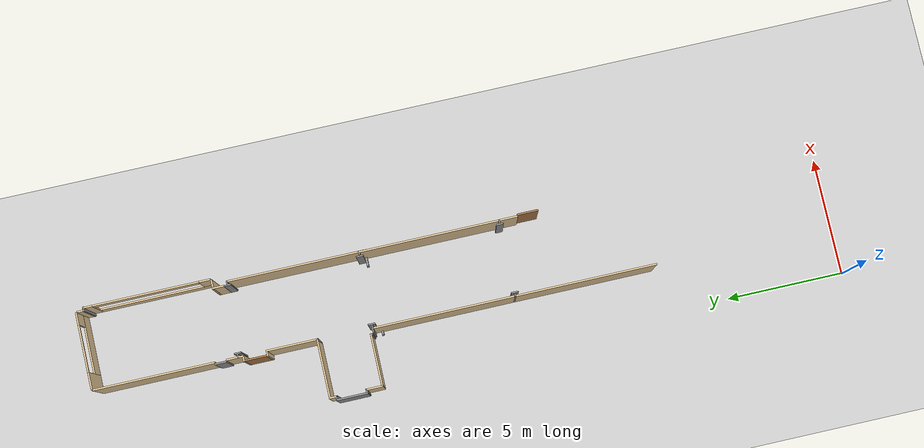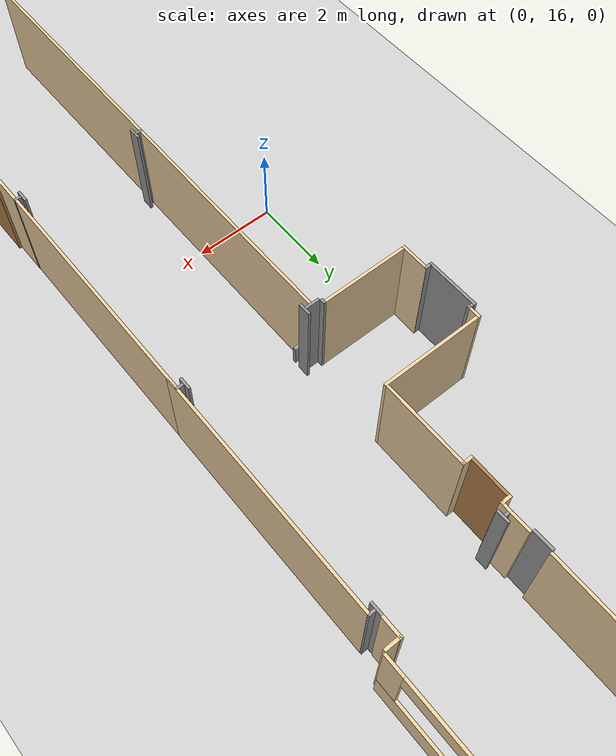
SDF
<sdf version="1.7">
 <world name="default">
  <model name="ground_plane">
   <static>1</static>
   <link name="link">
    <collision name="collision">
     <geometry><plane><normal>0 0 1</normal><size>100 100</size></plane></geometry>
     <surface>
      <contact><collide_bitmask>65535</collide_bitmask></contact>
      <friction><ode><mu>100</mu><mu2>50</mu2></ode></friction>
     </surface>
    </collision>
    <visual name="visual">
     <cast_shadows>0</cast_shadows>
     <geometry><plane><normal>0 0 1</normal><size>100 100</size></plane></geometry>
     <material>
      <script><uri>file://media/materials/scripts/gazebo.material</uri><name>Gazebo/Grey</name></script>
     </material>
    </visual>
   </link>
  </model>
  <model name="Fakulte_koridor">
   <pose>-0.108629 -0.105707 0 0 -0 0</pose>
   <link name="Wall_100">
    <collision name="Wall_100_Collision">
     <geometry><box><size>0.3 0.06 2.5</size></box></geometry>
     <pose>0 0 1.25 0 -0 0</pose>
    </collision>
    <visual name="Wall_100_Visual">
     <pose>0 0 1.25 0 -0 0</pose>
     <geometry><box><size>0.3 0.06 2.5</size></box></geometry>
     <material>
      <script><uri>file://media/materials/scripts/gazebo.material</uri><name>Gazebo/Grey</name></script>
      <ambient>0.180392 0.203922 0.211765 1</ambient>
     </material>
     <meta><layer>0</layer></meta>
    </visual>
    <pose>5.11163 14.0287 0 0 -0 -1.5708</pose>
   </link>
   <link name="Wall_102">
    <collision name="Wall_102_Collision">
     <geometry><box><size>5.965 0.07 2.5</size></box></geometry>
     <pose>0 0 1.25 0 -0 0</pose>
    </collision>
    <visual name="Wall_102_Visual">
     <pose>0 0 1.25 0 -0 0</pose>
     <geometry><box><size>5.965 0.07 2.5</size></box></geometry>
     <material>
      <script><uri>file://media/materials/scripts/gazebo.material</uri><name>Gazebo/Grey</name></script>
      <ambient>0.921569 0.807843 0.615686 1</ambient>
     </material>
     <meta><layer>0</layer></meta>
    </visual>
    <pose>5.27021 17.0333 0 0 -0 -1.5708</pose>
   </link>
   <link name="Wall_104">
    <collision name="Wall_104_Collision">
     <geometry><box><size>0.175 0.06 2.5</size></box></geometry>
     <pose>0 0 1.25 0 -0 0</pose>
    </collision>
    <visual name="Wall_104_Visual">
     <pose>0 0 1.25 0 -0 0</pose>
     <geometry><box><size>0.175 0.06 2.5</size></box></geometry>
     <material>
      <script><uri>file://media/materials/scripts/gazebo.material</uri><name>Gazebo/Grey</name></script>
      <ambient>0.180392 0.203922 0.211765 1</ambient>
     </material>
     <meta><layer>0</layer></meta>
    </visual>
    <pose>5.21005 19.996 0 0 -0 0</pose>
   </link>
   <link name="Wall_106">
    <collision name="Wall_106_Collision">
     <geometry><box><size>0.3 0.06 2.5</size></box></geometry>
     <pose>0 0 1.25 0 -0 0</pose>
    </collision>
    <visual name="Wall_106_Visual">
     <pose>0 0 1.25 0 -0 0</pose>
     <geometry><box><size>0.3 0.06 2.5</size></box></geometry>
     <material>
      <script><uri>file://media/materials/scripts/gazebo.material</uri><name>Gazebo/Grey</name></script>
      <ambient>0.180392 0.203922 0.211765 1</ambient>
     </material>
     <meta><layer>0</layer></meta>
    </visual>
    <pose>5.08827 20.0046 0 0 -0 -1.5708</pose>
   </link>
   <link name="Wall_108">
    <collision name="Wall_108_Collision">
     <geometry><box><size>5.895 0.07 2.5</size></box></geometry>
     <pose>0 0 1.25 0 -0 0</pose>
    </collision>
    <visual name="Wall_108_Visual">
     <pose>0 0 1.25 0 -0 0</pose>
     <geometry><box><size>5.895 0.07 2.5</size></box></geometry>
     <material>
      <script><uri>file://media/materials/scripts/gazebo.material</uri><name>Gazebo/Grey</name></script>
      <ambient>0.921569 0.807843 0.615686 1</ambient>
     </material>
     <meta><layer>0</layer></meta>
    </visual>
    <pose>5.27802 22.6416 0 0 -0 -1.5708</pose>
   </link>
   <link name="Wall_110">
    <collision name="Wall_110_Collision">
     <geometry><box><size>0.175 0.06 2.5</size></box></geometry>
     <pose>0 0 1.25 0 -0 0</pose>
    </collision>
    <visual name="Wall_110_Visual">
     <pose>0 0 1.25 0 -0 0</pose>
     <geometry><box><size>0.175 0.06 2.5</size></box></geometry>
     <material>
      <script><uri>file://media/materials/scripts/gazebo.material</uri><name>Gazebo/Grey</name></script>
      <ambient>0.180392 0.203922 0.211765 1</ambient>
     </material>
     <meta><layer>0</layer></meta>
    </visual>
    <pose>5.21975 25.6028 0 0 -0 0</pose>
   </link>
   <link name="Wall_112">
    <collision name="Wall_112_Collision">
     <geometry><box><size>0.3 0.06 2.5</size></box></geometry>
     <pose>0 0 1.25 0 -0 0</pose>
    </collision>
    <visual name="Wall_112_Visual">
     <pose>0 0 1.25 0 -0 0</pose>
     <geometry><box><size>0.3 0.06 2.5</size></box></geometry>
     <material>
      <script><uri>file://media/materials/scripts/gazebo.material</uri><name>Gazebo/Grey</name></script>
      <ambient>0.180392 0.203922 0.211765 1</ambient>
     </material>
     <meta><layer>0</layer></meta>
    </visual>
    <pose>5.11751 25.6043 0 0 -0 -1.5708</pose>
   </link>
   <link name="Wall_114">
    <collision name="Wall_114_Collision">
     <geometry><box><size>0.505 0.07 2.5</size></box></geometry>
     <pose>0 0 1.25 0 -0 0</pose>
    </collision>
    <visual name="Wall_114_Visual">
     <pose>0 0 1.25 0 -0 0</pose>
     <geometry><box><size>0.505 0.07 2.5</size></box></geometry>
     <material>
      <script><uri>file://media/materials/scripts/gazebo.material</uri><name>Gazebo/Grey</name></script>
      <ambient>0.921569 0.807843 0.615686 1</ambient>
     </material>
     <meta><layer>0</layer></meta>
    </visual>
    <pose>5.1239 26.0091 0 0 -0 -1.5708</pose>
   </link>
   <link name="Wall_118">
    <collision name="Wall_118_Collision">
     <geometry><box><size>0.4 0.07 2.5</size></box></geometry>
     <pose>0 0 1.25 0 -0 0</pose>
    </collision>
    <visual name="Wall_118_Visual">
     <pose>0 0 1.25 0 -0 0</pose>
     <geometry><box><size>0.4 0.07 2.5</size></box></geometry>
     <material>
      <script><uri>file://media/materials/scripts/gazebo.material</uri><name>Gazebo/Grey</name></script>
      <ambient>0.921569 0.807843 0.615686 1</ambient>
     </material>
     <meta><layer>0</layer></meta>
    </visual>
    <pose>5.28591 26.2172 0 0 -0 0</pose>
   </link>
   <link name="Wall_120">
    <pose>5.5144 28.9535 0 0 -0 -1.5708</pose>
    <visual name="Wall_120_Visual_0">
     <pose>-2.49861 0 1.25 0 -0 0</pose>
     <geometry><box><size>0.407786 0.07 2.5</size></box></geometry>
     <material>
      <script><uri>file://media/materials/scripts/gazebo.material</uri><name>Gazebo/Grey</name></script>
      <ambient>0.921569 0.807843 0.615686 1</ambient>
     </material>
     <meta><layer>0</layer></meta>
    </visual>
    <collision name="Wall_120_Collision_0">
     <geometry><box><size>0.407786 0.07 2.5</size></box></geometry>
     <pose>-2.49861 0 1.25 0 -0 0</pose>
    </collision>
    <visual name="Wall_120_Visual_1">
     <pose>0.203893 0 0.375 0 -0 0</pose>
     <geometry><box><size>4.99721 0.07 0.75</size></box></geometry>
     <material>
      <script><uri>file://media/materials/scripts/gazebo.material</uri><name>Gazebo/Grey</name></script>
      <ambient>0.921569 0.807843 0.615686 1</ambient>
     </material>
     <meta><layer>0</layer></meta>
    </visual>
    <collision name="Wall_120_Collision_1">
     <geometry><box><size>4.99721 0.07 0.75</size></box></geometry>
     <pose>0.203893 0 0.375 0 -0 0</pose>
    </collision>
    <visual name="Wall_120_Visual_2">
     <pose>2.45389 0 1.625 0 -0 0</pose>
     <geometry><box><size>0.497214 0.07 1.75</size></box></geometry>
     <material>
      <script><uri>file://media/materials/scripts/gazebo.material</uri><name>Gazebo/Grey</name></script>
      <ambient>0.921569 0.807843 0.615686 1</ambient>
     </material>
     <meta><layer>0</layer></meta>
    </visual>
    <collision name="Wall_120_Collision_2">
     <geometry><box><size>0.497214 0.07 1.75</size></box></geometry>
     <pose>2.45389 0 1.625 0 -0 0</pose>
    </collision>
    <visual name="Wall_120_Visual_3">
     <pose>-0.044714 0 2.225 0 -0 0</pose>
     <geometry><box><size>4.5 0.07 0.55</size></box></geometry>
     <material>
      <script><uri>file://media/materials/scripts/gazebo.material</uri><name>Gazebo/Grey</name></script>
      <ambient>0.921569 0.807843 0.615686 1</ambient>
     </material>
     <meta><layer>0</layer></meta>
    </visual>
    <collision name="Wall_120_Collision_3">
     <geometry><box><size>4.5 0.07 0.55</size></box></geometry>
     <pose>-0.044714 0 2.225 0 -0 0</pose>
    </collision>
   </link>
   <link name="Wall_122">
    <collision name="Wall_122_Collision">
     <geometry><box><size>0.195 0.07 2.5</size></box></geometry>
     <pose>0 0 1.25 0 -0 0</pose>
    </collision>
    <visual name="Wall_122_Visual">
     <pose>0 0 1.25 0 -0 0</pose>
     <geometry><box><size>0.195 0.07 2.5</size></box></geometry>
     <material>
      <script><uri>file://media/materials/scripts/gazebo.material</uri><name>Gazebo/Grey</name></script>
      <ambient>1 1 1 1</ambient>
     </material>
     <meta><layer>0</layer></meta>
    </visual>
    <pose>5.4612 31.621 0 0 -0 0</pose>
   </link>
   <link name="Wall_124">
    <collision name="Wall_124_Collision">
     <geometry><box><size>0.32 0.07 2.5</size></box></geometry>
     <pose>0 0 1.25 0 -0 0</pose>
    </collision>
    <visual name="Wall_124_Visual">
     <pose>0 0 1.25 0 -0 0</pose>
     <geometry><box><size>0.32 0.07 2.5</size></box></geometry>
     <material>
      <script><uri>file://media/materials/scripts/gazebo.material</uri><name>Gazebo/Grey</name></script>
      <ambient>0.921569 0.807843 0.615686 1</ambient>
     </material>
     <meta><layer>0</layer></meta>
    </visual>
    <pose>5.40314 31.7556 0 0 -0 -1.5708</pose>
   </link>
   <link name="Wall_126">
    <pose>3.74779 31.9519 0 0 -0 0</pose>
    <visual name="Wall_126_Visual_0">
     <pose>-1.26795 0 1.25 0 -0 0</pose>
     <geometry><box><size>0.743101 0.07 2.5</size></box></geometry>
     <material>
      <script><uri>file://media/materials/scripts/gazebo.material</uri><name>Gazebo/Grey</name></script>
      <ambient>0.921569 0.807843 0.615686 1</ambient>
     </material>
     <meta><layer>0</layer></meta>
    </visual>
    <collision name="Wall_126_Collision_0">
     <geometry><box><size>0.743101 0.07 2.5</size></box></geometry>
     <pose>-1.26795 0 1.25 0 -0 0</pose>
    </collision>
    <visual name="Wall_126_Visual_1">
     <pose>0.37155 0 0.6 0 -0 0</pose>
     <geometry><box><size>2.5359 0.07 1.2</size></box></geometry>
     <material>
      <script><uri>file://media/materials/scripts/gazebo.material</uri><name>Gazebo/Grey</name></script>
      <ambient>0.921569 0.807843 0.615686 1</ambient>
     </material>
     <meta><layer>0</layer></meta>
    </visual>
    <collision name="Wall_126_Collision_1">
     <geometry><box><size>2.5359 0.07 1.2</size></box></geometry>
     <pose>0.37155 0 0.6 0 -0 0</pose>
    </collision>
    <visual name="Wall_126_Visual_2">
     <pose>1.37155 0 1.85 0 -0 0</pose>
     <geometry><box><size>0.535899 0.07 1.3</size></box></geometry>
     <material>
      <script><uri>file://media/materials/scripts/gazebo.material</uri><name>Gazebo/Grey</name></script>
      <ambient>0.921569 0.807843 0.615686 1</ambient>
     </material>
     <meta><layer>0</layer></meta>
    </visual>
    <collision name="Wall_126_Collision_2">
     <geometry><box><size>0.535899 0.07 1.3</size></box></geometry>
     <pose>1.37155 0 1.85 0 -0 0</pose>
    </collision>
    <visual name="Wall_126_Visual_3">
     <pose>0.103601 0 2.45 0 -0 0</pose>
     <geometry><box><size>2 0.07 0.1</size></box></geometry>
     <material>
      <script><uri>file://media/materials/scripts/gazebo.material</uri><name>Gazebo/Grey</name></script>
      <ambient>0.921569 0.807843 0.615686 1</ambient>
     </material>
     <meta><layer>0</layer></meta>
    </visual>
    <collision name="Wall_126_Collision_3">
     <geometry><box><size>2 0.07 0.1</size></box></geometry>
     <pose>0.103601 0 2.45 0 -0 0</pose>
    </collision>
   </link>
   <link name="Wall_128">
    <collision name="Wall_128_Collision">
     <geometry><box><size>5.145 0.07 2.5</size></box></geometry>
     <pose>0 0 1.25 0 -0 0</pose>
    </collision>
    <visual name="Wall_128_Visual">
     <pose>0 0 1.25 0 -0 0</pose>
     <geometry><box><size>5.145 0.07 2.5</size></box></geometry>
     <material>
      <script><uri>file://media/materials/scripts/gazebo.material</uri><name>Gazebo/Grey</name></script>
      <ambient>0.921569 0.807843 0.615686 1</ambient>
     </material>
     <meta><layer>0</layer></meta>
    </visual>
    <pose>2.09688 29.3576 0 0 -0 -1.5708</pose>
   </link>
   <link name="Wall_130">
    <collision name="Wall_130_Collision">
     <geometry><box><size>0.495 0.07 2.5</size></box></geometry>
     <pose>0 0 1.25 0 -0 0</pose>
    </collision>
    <visual name="Wall_130_Visual">
     <pose>0 0 1.25 0 -0 0</pose>
     <geometry><box><size>0.495 0.07 2.5</size></box></geometry>
     <material>
      <script><uri>file://media/materials/scripts/gazebo.material</uri><name>Gazebo/Grey</name></script>
      <ambient>0.729412 0.741176 0.713726 1</ambient>
     </material>
     <meta><layer>0</layer></meta>
    </visual>
    <pose>2.03085 26.5424 0 0 -0 -1.5708</pose>
   </link>
   <link name="Wall_132">
    <collision name="Wall_132_Collision">
     <geometry><box><size>0.745 0.07 2.5</size></box></geometry>
     <pose>0 0 1.25 0 -0 0</pose>
    </collision>
    <visual name="Wall_132_Visual">
     <pose>0 0 1.25 0 -0 0</pose>
     <geometry><box><size>0.745 0.07 2.5</size></box></geometry>
     <material>
      <script><uri>file://media/materials/scripts/gazebo.material</uri><name>Gazebo/Grey</name></script>
      <ambient>0.921569 0.807843 0.615686 1</ambient>
     </material>
     <meta><layer>0</layer></meta>
    </visual>
    <pose>2.09827 25.9291 0 0 -0 -1.5708</pose>
   </link>
   <link name="Wall_134">
    <collision name="Wall_134_Collision">
     <geometry><box><size>0.175 0.06 2.5</size></box></geometry>
     <pose>0 0 1.25 0 -0 0</pose>
    </collision>
    <visual name="Wall_134_Visual">
     <pose>0 0 1.25 0 -0 0</pose>
     <geometry><box><size>0.175 0.06 2.5</size></box></geometry>
     <material>
      <script><uri>file://media/materials/scripts/gazebo.material</uri><name>Gazebo/Grey</name></script>
      <ambient>0.180392 0.203922 0.211765 1</ambient>
     </material>
     <meta><layer>0</layer></meta>
    </visual>
    <pose>2.15167 25.7938 0 0 -0 0</pose>
   </link>
   <link name="Wall_136">
    <collision name="Wall_136_Collision">
     <geometry><box><size>0.3 0.06 2.5</size></box></geometry>
     <pose>0 0 1.25 0 -0 0</pose>
    </collision>
    <visual name="Wall_136_Visual">
     <pose>0 0 1.25 0 -0 0</pose>
     <geometry><box><size>0.3 0.06 2.5</size></box></geometry>
     <material>
      <script><uri>file://media/materials/scripts/gazebo.material</uri><name>Gazebo/Grey</name></script>
      <ambient>0.180392 0.203922 0.211765 1</ambient>
     </material>
     <meta><layer>0</layer></meta>
    </visual>
    <pose>2.268 25.7827 0 0 -0 -1.5708</pose>
   </link>
   <link name="Wall_138">
    <collision name="Wall_138_Collision">
     <geometry><box><size>0.262 0.07 2.5</size></box></geometry>
     <pose>0 0 1.25 0 -0 0</pose>
    </collision>
    <visual name="Wall_138_Visual">
     <pose>0 0 1.25 0 -0 0</pose>
     <geometry><box><size>0.262 0.07 2.5</size></box></geometry>
     <material>
      <script><uri>file://media/materials/scripts/gazebo.material</uri><name>Gazebo/Grey</name></script>
      <ambient>0.921569 0.807843 0.615686 1</ambient>
     </material>
     <meta><layer>0</layer></meta>
    </visual>
    <pose>2.00137 25.5882 0 0 -0 3.14159</pose>
   </link>
   <link name="Wall_140">
    <collision name="Wall_140_Collision">
     <geometry><box><size>0.933 0.07 2.5</size></box></geometry>
     <pose>0 0 1.25 0 -0 0</pose>
    </collision>
    <visual name="Wall_140_Visual">
     <pose>0 0 1.25 0 -0 0</pose>
     <geometry><box><size>0.933 0.07 2.5</size></box></geometry>
     <material>
      <script><uri>file://media/materials/scripts/gazebo.material</uri><name>Gazebo/Wood</name></script>
      <ambient>1 1 1 1</ambient>
     </material>
     <meta><layer>0</layer></meta>
    </visual>
    <pose>1.90607 25.0907 0 0 -0 -1.5708</pose>
   </link>
   <link name="Wall_142">
    <collision name="Wall_142_Collision">
     <geometry><box><size>0.262 0.07 2.5</size></box></geometry>
     <pose>0 0 1.25 0 -0 0</pose>
    </collision>
    <visual name="Wall_142_Visual">
     <pose>0 0 1.25 0 -0 0</pose>
     <geometry><box><size>0.262 0.07 2.5</size></box></geometry>
     <material>
      <script><uri>file://media/materials/scripts/gazebo.material</uri><name>Gazebo/Grey</name></script>
      <ambient>0.921569 0.807843 0.615686 1</ambient>
     </material>
     <meta><layer>0</layer></meta>
    </visual>
    <pose>2.00059 24.593 0 0 -0 0</pose>
   </link>
   <link name="Wall_144">
    <collision name="Wall_144_Collision">
     <geometry><box><size>2.203 0.07 2.5</size></box></geometry>
     <pose>0 0 1.25 0 -0 0</pose>
    </collision>
    <visual name="Wall_144_Visual">
     <pose>0 0 1.25 0 -0 0</pose>
     <geometry><box><size>2.203 0.07 2.5</size></box></geometry>
     <material>
      <script><uri>file://media/materials/scripts/gazebo.material</uri><name>Gazebo/Grey</name></script>
      <ambient>0.921569 0.807843 0.615686 1</ambient>
     </material>
     <meta><layer>0</layer></meta>
    </visual>
    <pose>2.09965 23.523 0 0 -0 -1.5708</pose>
   </link>
   <link name="Wall_146">
    <collision name="Wall_146_Collision">
     <geometry><box><size>2.483 0.07 2.5</size></box></geometry>
     <pose>0 0 1.25 0 -0 0</pose>
    </collision>
    <visual name="Wall_146_Visual">
     <pose>0 0 1.25 0 -0 0</pose>
     <geometry><box><size>2.483 0.07 2.5</size></box></geometry>
     <material>
      <script><uri>file://media/materials/scripts/gazebo.material</uri><name>Gazebo/Grey</name></script>
      <ambient>0.921569 0.807843 0.615686 1</ambient>
     </material>
     <meta><layer>0</layer></meta>
    </visual>
    <pose>0.894313 22.4573 0 0 -0 0</pose>
   </link>
   <link name="Wall_148">
    <collision name="Wall_148_Collision">
     <geometry><box><size>0.345 0.07 2.5</size></box></geometry>
     <pose>0 0 1.25 0 -0 0</pose>
    </collision>
    <visual name="Wall_148_Visual">
     <pose>0 0 1.25 0 -0 0</pose>
     <geometry><box><size>0.345 0.07 2.5</size></box></geometry>
     <material>
      <script><uri>file://media/materials/scripts/gazebo.material</uri><name>Gazebo/Grey</name></script>
      <ambient>0.921569 0.807843 0.615686 1</ambient>
     </material>
     <meta><layer>0</layer></meta>
    </visual>
    <pose>-0.377773 22.3219 0 0 -0 -1.5708</pose>
   </link>
   <link name="Wall_150">
    <collision name="Wall_150_Collision">
     <geometry><box><size>0.153 0.07 2.5</size></box></geometry>
     <pose>0 0 1.25 0 -0 0</pose>
    </collision>
    <visual name="Wall_150_Visual">
     <pose>0 0 1.25 0 -0 0</pose>
     <geometry><box><size>0.153 0.07 2.5</size></box></geometry>
     <material>
      <script><uri>file://media/materials/scripts/gazebo.material</uri><name>Gazebo/Grey</name></script>
      <ambient>0.533333 0.541176 0.521569 1</ambient>
     </material>
     <meta><layer>0</layer></meta>
    </visual>
    <pose>-0.413524 22.1834 0 0 -0 3.14159</pose>
   </link>
   <link name="Wall_152">
    <collision name="Wall_152_Collision">
     <geometry><box><size>1.338 0.07 2.5</size></box></geometry>
     <pose>0 0 1.25 0 -0 0</pose>
    </collision>
    <visual name="Wall_152_Visual">
     <pose>0 0 1.25 0 -0 0</pose>
     <geometry><box><size>1.338 0.07 2.5</size></box></geometry>
     <material>
      <script><uri>file://media/materials/scripts/gazebo.material</uri><name>Gazebo/Grey</name></script>
      <ambient>0.533333 0.541176 0.521569 1</ambient>
     </material>
     <meta><layer>0</layer></meta>
    </visual>
    <pose>-0.516682 21.5521 0 0 -0 -1.5708</pose>
   </link>
   <link name="Wall_154">
    <collision name="Wall_154_Collision">
     <geometry><box><size>0.153 0.07 2.5</size></box></geometry>
     <pose>0 0 1.25 0 -0 0</pose>
    </collision>
    <visual name="Wall_154_Visual">
     <pose>0 0 1.25 0 -0 0</pose>
     <geometry><box><size>0.153 0.07 2.5</size></box></geometry>
     <material>
      <script><uri>file://media/materials/scripts/gazebo.material</uri><name>Gazebo/Grey</name></script>
      <ambient>0.533333 0.541176 0.521569 1</ambient>
     </material>
     <meta><layer>0</layer></meta>
    </visual>
    <pose>-0.421701 20.9154 0 0 -0 0</pose>
   </link>
   <link name="Wall_156">
    <collision name="Wall_156_Collision">
     <geometry><box><size>0.738 0.07 2.5</size></box></geometry>
     <pose>0 0 1.25 0 -0 0</pose>
    </collision>
    <visual name="Wall_156_Visual">
     <pose>0 0 1.25 0 -0 0</pose>
     <geometry><box><size>0.738 0.07 2.5</size></box></geometry>
     <material>
      <script><uri>file://media/materials/scripts/gazebo.material</uri><name>Gazebo/Grey</name></script>
      <ambient>0.921569 0.807843 0.615686 1</ambient>
     </material>
     <meta><layer>0</layer></meta>
    </visual>
    <pose>-0.371379 20.5814 0 0 -0 -1.5708</pose>
   </link>
   <link name="Wall_158">
    <collision name="Wall_158_Collision">
     <geometry><box><size>2.19 0.07 2.5</size></box></geometry>
     <pose>0 0 1.25 0 -0 0</pose>
    </collision>
    <visual name="Wall_158_Visual">
     <pose>0 0 1.25 0 -0 0</pose>
     <geometry><box><size>2.19 0.07 2.5</size></box></geometry>
     <material>
      <script><uri>file://media/materials/scripts/gazebo.material</uri><name>Gazebo/Grey</name></script>
      <ambient>0.921569 0.807843 0.615686 1</ambient>
     </material>
     <meta><layer>0</layer></meta>
    </visual>
    <pose>0.740321 20.2486 0 0 -0 0</pose>
   </link>
   <link name="Wall_160">
    <collision name="Wall_160_Collision">
     <geometry><box><size>0.13 0.06 2.5</size></box></geometry>
     <pose>0 0 1.25 0 -0 0</pose>
    </collision>
    <visual name="Wall_160_Visual">
     <pose>0 0 1.25 0 -0 0</pose>
     <geometry><box><size>0.13 0.06 2.5</size></box></geometry>
     <material>
      <script><uri>file://media/materials/scripts/gazebo.material</uri><name>Gazebo/Grey</name></script>
      <ambient>0.180392 0.203922 0.211765 1</ambient>
     </material>
     <meta><layer>0</layer></meta>
    </visual>
    <pose>1.81046 20.2205 0 0 -0 -1.5708</pose>
   </link>
   <link name="Wall_162">
    <collision name="Wall_162_Collision">
     <geometry><box><size>0.35 0.06 2.5</size></box></geometry>
     <pose>0 0 1.25 0 -0 0</pose>
    </collision>
    <visual name="Wall_162_Visual">
     <pose>0 0 1.25 0 -0 0</pose>
     <geometry><box><size>0.35 0.06 2.5</size></box></geometry>
     <material>
      <script><uri>file://media/materials/scripts/gazebo.material</uri><name>Gazebo/Grey</name></script>
      <ambient>0.180392 0.203922 0.211765 1</ambient>
     </material>
     <meta><layer>0</layer></meta>
    </visual>
    <pose>2.01991 20.1265 0 0 -0 0</pose>
   </link>
   <link name="Wall_164">
    <collision name="Wall_164_Collision">
     <geometry><box><size>0.3 0.06 2.5</size></box></geometry>
     <pose>0 0 1.25 0 -0 0</pose>
    </collision>
    <visual name="Wall_164_Visual">
     <pose>0 0 1.25 0 -0 0</pose>
     <geometry><box><size>0.3 0.06 2.5</size></box></geometry>
     <material>
      <script><uri>file://media/materials/scripts/gazebo.material</uri><name>Gazebo/Grey</name></script>
      <ambient>0.180392 0.203922 0.211765 1</ambient>
     </material>
     <meta><layer>0</layer></meta>
    </visual>
    <pose>2.22081 20.1358 0 0 -0 -1.5708</pose>
   </link>
   <link name="Wall_166">
    <collision name="Wall_166_Collision">
     <geometry><box><size>5.995 0.07 2.5</size></box></geometry>
     <pose>0 0 1.25 0 -0 0</pose>
    </collision>
    <visual name="Wall_166_Visual">
     <pose>0 0 1.25 0 -0 0</pose>
     <geometry><box><size>5.995 0.07 2.5</size></box></geometry>
     <material>
      <script><uri>file://media/materials/scripts/gazebo.material</uri><name>Gazebo/Grey</name></script>
      <ambient>0.921569 0.807843 0.615686 1</ambient>
     </material>
     <meta><layer>0</layer></meta>
    </visual>
    <pose>2.04763 17.0972 0 0 -0 -1.5708</pose>
   </link>
   <link name="Wall_168">
    <collision name="Wall_168_Collision">
     <geometry><box><size>0.175 0.06 2.5</size></box></geometry>
     <pose>0 0 1.25 0 -0 0</pose>
    </collision>
    <visual name="Wall_168_Visual">
     <pose>0 0 1.25 0 -0 0</pose>
     <geometry><box><size>0.175 0.06 2.5</size></box></geometry>
     <material>
      <script><uri>file://media/materials/scripts/gazebo.material</uri><name>Gazebo/Grey</name></script>
      <ambient>0.180392 0.203922 0.211765 1</ambient>
     </material>
     <meta><layer>0</layer></meta>
    </visual>
    <pose>2.10611 14.0679 0 0 -0 0</pose>
   </link>
   <link name="Wall_170">
    <collision name="Wall_170_Collision">
     <geometry><box><size>0.3 0.06 2.5</size></box></geometry>
     <pose>0 0 1.25 0 -0 0</pose>
    </collision>
    <visual name="Wall_170_Visual">
     <pose>0 0 1.25 0 -0 0</pose>
     <geometry><box><size>0.3 0.06 2.5</size></box></geometry>
     <material>
      <script><uri>file://media/materials/scripts/gazebo.material</uri><name>Gazebo/Grey</name></script>
      <ambient>0.180392 0.203922 0.211765 1</ambient>
     </material>
     <meta><layer>0</layer></meta>
    </visual>
    <pose>2.20124 14.0542 0 0 -0 -1.5708</pose>
   </link>
   <link name="Wall_172">
    <collision name="Wall_172_Collision">
     <geometry><box><size>5.995 0.07 2.5</size></box></geometry>
     <pose>0 0 1.25 0 -0 0</pose>
    </collision>
    <visual name="Wall_172_Visual">
     <pose>0 0 1.25 0 -0 0</pose>
     <geometry><box><size>5.995 0.07 2.5</size></box></geometry>
     <material>
      <script><uri>file://media/materials/scripts/gazebo.material</uri><name>Gazebo/Grey</name></script>
      <ambient>0.921569 0.807843 0.615686 1</ambient>
     </material>
     <meta><layer>0</layer></meta>
    </visual>
    <pose>2.04763 11.0372 0 0 -0 -1.5708</pose>
   </link>
   <link name="Wall_94">
    <collision name="Wall_94_Collision">
     <geometry><box><size>0.895 0.07 2.5</size></box></geometry>
     <pose>0 0 1.25 0 -0 0</pose>
    </collision>
    <visual name="Wall_94_Visual">
     <pose>0 0 1.25 0 -0 0</pose>
     <geometry><box><size>0.895 0.07 2.5</size></box></geometry>
     <material>
      <script><uri>file://media/materials/scripts/gazebo.material</uri><name>Gazebo/Wood</name></script>
      <ambient>1 1 1 1</ambient>
     </material>
     <meta><layer>0</layer></meta>
    </visual>
    <pose>5.33738 12.7867 0 0 -0 -1.5708</pose>
   </link>
   <link name="Wall_96">
    <collision name="Wall_96_Collision">
     <geometry><box><size>0.775 0.07 2.5</size></box></geometry>
     <pose>0 0 1.25 0 -0 0</pose>
    </collision>
    <visual name="Wall_96_Visual">
     <pose>0 0 1.25 0 -0 0</pose>
     <geometry><box><size>0.775 0.07 2.5</size></box></geometry>
     <material>
      <script><uri>file://media/materials/scripts/gazebo.material</uri><name>Gazebo/Grey</name></script>
      <ambient>0.921569 0.807843 0.615686 1</ambient>
     </material>
     <meta><layer>0</layer></meta>
    </visual>
    <pose>5.27592 13.6163 0 0 -0 -1.5708</pose>
   </link>
   <link name="Wall_98">
    <collision name="Wall_98_Collision">
     <geometry><box><size>0.175 0.06 2.5</size></box></geometry>
     <pose>0 0 1.25 0 -0 0</pose>
    </collision>
    <visual name="Wall_98_Visual">
     <pose>0 0 1.25 0 -0 0</pose>
     <geometry><box><size>0.175 0.06 2.5</size></box></geometry>
     <material>
      <script><uri>file://media/materials/scripts/gazebo.material</uri><name>Gazebo/Grey</name></script>
      <ambient>0.180392 0.203922 0.211765 1</ambient>
     </material>
     <meta><layer>0</layer></meta>
    </visual>
    <pose>5.22313 14.0267 0 0 -0 0</pose>
   </link>
   <static>1</static>
  </model>
  <model name="feature_kutu">
   <link name="link">
    <inertial>
     <mass>1</mass>
     <inertia>
      <ixx>0.166667</ixx>
      <ixy>0</ixy>
      <ixz>0</ixz>
      <iyy>0.166667</iyy>
      <iyz>0</iyz>
      <izz>0.166667</izz>
     </inertia>
    </inertial>
    <pose>0.472153 0.463114 0 0 -0 0</pose>
    <visual name="visual">
     <geometry><box><size>0.385 0.085 0.6</size></box></geometry>
     <material>
      <script><name>Gazebo/Grey</name><uri>file://media/materials/scripts/gazebo.material</uri></script>
      <shader type="pixel"><normal_map>__default__</normal_map></shader>
      <ambient>0.3 0.3 0.3 1</ambient>
      <diffuse>0.7 0.7 0.7 1</diffuse>
      <specular>0.01 0.01 0.01 1</specular>
      <emissive>0 0 0 1</emissive>
     </material>
    </visual>
    <collision name="collision_1">
     <geometry><box><size>0.385 0.085 0.6</size></box></geometry>
     <surface>
      <friction>
       <ode><mu>1</mu><mu2>1</mu2><fdir1>0 0 0</fdir1><slip1>0</slip1><slip2>0</slip2></ode>
       <torsional>
        <coefficient>1</coefficient>
        <patch_radius>0</patch_radius>
        <surface_radius>0</surface_radius>
        <use_patch_radius>1</use_patch_radius>
        <ode><slip>0</slip></ode>
       </torsional>
      </friction>
      <bounce><restitution_coefficient>0</restitution_coefficient><threshold>1e+06</threshold></bounce>
      <contact>
       <collide_without_contact>0</collide_without_contact>
       <collide_without_contact_bitmask>1</collide_without_contact_bitmask>
       <collide_bitmask>1</collide_bitmask>
       <ode>
        <soft_cfm>0</soft_cfm>
        <soft_erp>0.2</soft_erp>
        <kp>1e+13</kp>
        <kd>1</kd>
        <max_vel>0.01</max_vel>
        <min_depth>0</min_depth>
       </ode>
       <bullet>
        <split_impulse>1</split_impulse>
        <split_impulse_penetration_threshold>-0.01</split_impulse_penetration_threshold>
        <soft_cfm>0</soft_cfm>
        <soft_erp>0.2</soft_erp>
        <kp>1e+13</kp>
        <kd>1</kd>
       </bullet>
      </contact>
     </surface>
    </collision>
    <collision name="collision_2">
     <geometry><box><size>0.385 0.085 0.6</size></box></geometry>
     <surface>
      <friction>
       <ode><mu>1</mu><mu2>1</mu2><fdir1>0 0 0</fdir1><slip1>0</slip1><slip2>0</slip2></ode>
       <torsional>
        <coefficient>1</coefficient>
        <patch_radius>0</patch_radius>
        <surface_radius>0</surface_radius>
        <use_patch_radius>1</use_patch_radius>
        <ode><slip>0</slip></ode>
       </torsional>
      </friction>
      <bounce><restitution_coefficient>0</restitution_coefficient><threshold>1e+06</threshold></bounce>
      <contact>
       <collide_without_contact>0</collide_without_contact>
       <collide_without_contact_bitmask>1</collide_without_contact_bitmask>
       <collide_bitmask>1</collide_bitmask>
       <ode>
        <soft_cfm>0</soft_cfm>
        <soft_erp>0.2</soft_erp>
        <kp>1e+13</kp>
        <kd>1</kd>
        <max_vel>0.01</max_vel>
        <min_depth>0</min_depth>
       </ode>
       <bullet>
        <split_impulse>1</split_impulse>
        <split_impulse_penetration_threshold>-0.01</split_impulse_penetration_threshold>
        <soft_cfm>0</soft_cfm>
        <soft_erp>0.2</soft_erp>
        <kp>1e+13</kp>
        <kd>1</kd>
       </bullet>
      </contact>
     </surface>
    </collision>
    <collision name="collision">
     <geometry><box><size>0.385 0.085 0.6</size></box></geometry>
     <surface>
      <friction>
       <ode><mu>1</mu><mu2>1</mu2><fdir1>0 0 0</fdir1><slip1>0</slip1><slip2>0</slip2></ode>
       <torsional>
        <coefficient>1</coefficient>
        <patch_radius>0</patch_radius>
        <surface_radius>0</surface_radius>
        <use_patch_radius>1</use_patch_radius>
        <ode><slip>0</slip></ode>
       </torsional>
      </friction>
      <bounce><restitution_coefficient>0</restitution_coefficient><threshold>1e+06</threshold></bounce>
      <contact>
       <collide_without_contact>0</collide_without_contact>
       <collide_without_contact_bitmask>1</collide_without_contact_bitmask>
       <collide_bitmask>1</collide_bitmask>
       <ode>
        <soft_cfm>0</soft_cfm>
        <soft_erp>0.2</soft_erp>
        <kp>1e+13</kp>
        <kd>1</kd>
        <max_vel>0.01</max_vel>
        <min_depth>0</min_depth>
       </ode>
       <bullet>
        <split_impulse>1</split_impulse>
        <split_impulse_penetration_threshold>-0.01</split_impulse_penetration_threshold>
        <soft_cfm>0</soft_cfm>
        <soft_erp>0.2</soft_erp>
        <kp>1e+13</kp>
        <kd>1</kd>
       </bullet>
      </contact>
     </surface>
    </collision>
   </link>
   <static>0</static>
   <pose>4.46008 19.24 0.229529 0 -0 0</pose>
  </model>
  <model name="feature_kutu2">
   <link name="link">
    <inertial>
     <mass>1</mass>
     <inertia>
      <ixx>0.166667</ixx>
      <ixy>0</ixy>
      <ixz>0</ixz>
      <iyy>0.166667</iyy>
      <iyz>0</iyz>
      <izz>0.166667</izz>
     </inertia>
    </inertial>
    <pose>0.472153 0.463114 0 0 -0 0</pose>
    <visual name="visual">
     <geometry><box><size>0.385 0.085 0.6</size></box></geometry>
     <material>
      <script><name>Gazebo/Grey</name><uri>file://media/materials/scripts/gazebo.material</uri></script>
      <shader type="pixel"><normal_map>__default__</normal_map></shader>
      <ambient>0.3 0.3 0.3 1</ambient>
      <diffuse>0.7 0.7 0.7 1</diffuse>
      <specular>0.01 0.01 0.01 1</specular>
      <emissive>0 0 0 1</emissive>
     </material>
    </visual>
    <collision name="collision_1">
     <geometry><box><size>0.385 0.085 0.6</size></box></geometry>
     <surface>
      <friction>
       <ode><mu>1</mu><mu2>1</mu2><fdir1>0 0 0</fdir1><slip1>0</slip1><slip2>0</slip2></ode>
       <torsional>
        <coefficient>1</coefficient>
        <patch_radius>0</patch_radius>
        <surface_radius>0</surface_radius>
        <use_patch_radius>1</use_patch_radius>
        <ode><slip>0</slip></ode>
       </torsional>
      </friction>
      <bounce><restitution_coefficient>0</restitution_coefficient><threshold>1e+06</threshold></bounce>
      <contact>
       <collide_without_contact>0</collide_without_contact>
       <collide_without_contact_bitmask>1</collide_without_contact_bitmask>
       <collide_bitmask>1</collide_bitmask>
       <ode>
        <soft_cfm>0</soft_cfm>
        <soft_erp>0.2</soft_erp>
        <kp>1e+13</kp>
        <kd>1</kd>
        <max_vel>0.01</max_vel>
        <min_depth>0</min_depth>
       </ode>
       <bullet>
        <split_impulse>1</split_impulse>
        <split_impulse_penetration_threshold>-0.01</split_impulse_penetration_threshold>
        <soft_cfm>0</soft_cfm>
        <soft_erp>0.2</soft_erp>
        <kp>1e+13</kp>
        <kd>1</kd>
       </bullet>
      </contact>
     </surface>
    </collision>
    <collision name="collision_2">
     <geometry><box><size>0.385 0.085 0.6</size></box></geometry>
     <surface>
      <friction>
       <ode><mu>1</mu><mu2>1</mu2><fdir1>0 0 0</fdir1><slip1>0</slip1><slip2>0</slip2></ode>
       <torsional>
        <coefficient>1</coefficient>
        <patch_radius>0</patch_radius>
        <surface_radius>0</surface_radius>
        <use_patch_radius>1</use_patch_radius>
        <ode><slip>0</slip></ode>
       </torsional>
      </friction>
      <bounce><restitution_coefficient>0</restitution_coefficient><threshold>1e+06</threshold></bounce>
      <contact>
       <collide_without_contact>0</collide_without_contact>
       <collide_without_contact_bitmask>1</collide_without_contact_bitmask>
       <collide_bitmask>1</collide_bitmask>
       <ode>
        <soft_cfm>0</soft_cfm>
        <soft_erp>0.2</soft_erp>
        <kp>1e+13</kp>
        <kd>1</kd>
        <max_vel>0.01</max_vel>
        <min_depth>0</min_depth>
       </ode>
       <bullet>
        <split_impulse>1</split_impulse>
        <split_impulse_penetration_threshold>-0.01</split_impulse_penetration_threshold>
        <soft_cfm>0</soft_cfm>
        <soft_erp>0.2</soft_erp>
        <kp>1e+13</kp>
        <kd>1</kd>
       </bullet>
      </contact>
     </surface>
    </collision>
    <collision name="collision">
     <geometry><box><size>0.385 0.085 0.6</size></box></geometry>
     <surface>
      <friction>
       <ode><mu>1</mu><mu2>1</mu2><fdir1>0 0 0</fdir1><slip1>0</slip1><slip2>0</slip2></ode>
       <torsional>
        <coefficient>1</coefficient>
        <patch_radius>0</patch_radius>
        <surface_radius>0</surface_radius>
        <use_patch_radius>1</use_patch_radius>
        <ode><slip>0</slip></ode>
       </torsional>
      </friction>
      <bounce><restitution_coefficient>0</restitution_coefficient><threshold>1e+06</threshold></bounce>
      <contact>
       <collide_without_contact>0</collide_without_contact>
       <collide_without_contact_bitmask>1</collide_without_contact_bitmask>
       <collide_bitmask>1</collide_bitmask>
       <ode>
        <soft_cfm>0</soft_cfm>
        <soft_erp>0.2</soft_erp>
        <kp>1e+13</kp>
        <kd>1</kd>
        <max_vel>0.01</max_vel>
        <min_depth>0</min_depth>
       </ode>
       <bullet>
        <split_impulse>1</split_impulse>
        <split_impulse_penetration_threshold>-0.01</split_impulse_penetration_threshold>
        <soft_cfm>0</soft_cfm>
        <soft_erp>0.2</soft_erp>
        <kp>1e+13</kp>
        <kd>1</kd>
       </bullet>
      </contact>
     </surface>
    </collision>
   </link>
   <static>0</static>
   <pose>1.46008 19.24 0.229529 0 -0 0</pose>
  </model>
 </world>
</sdf>
